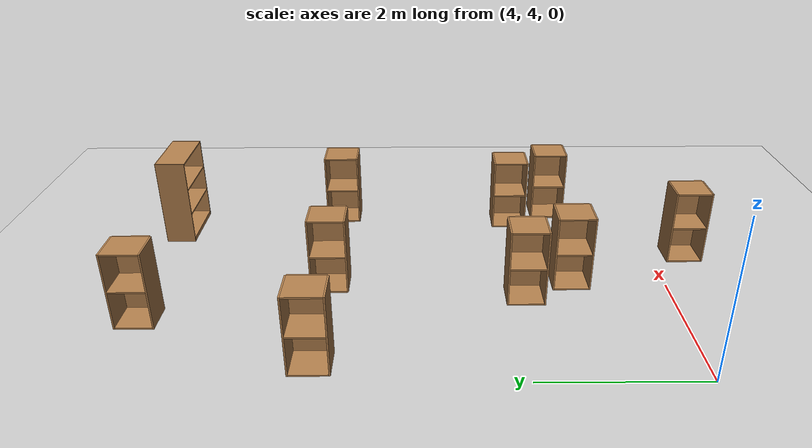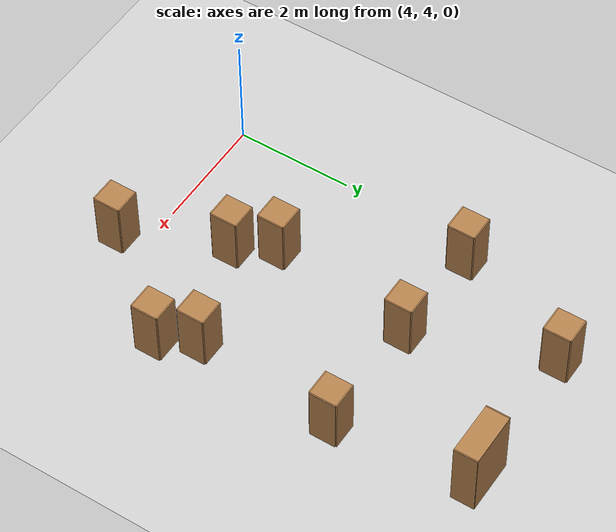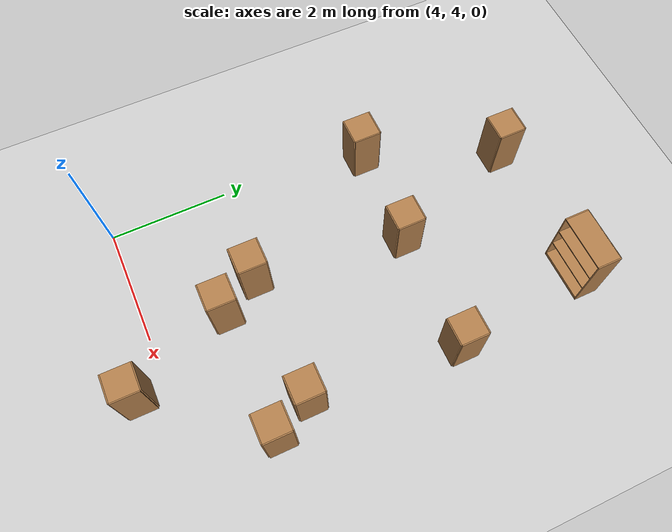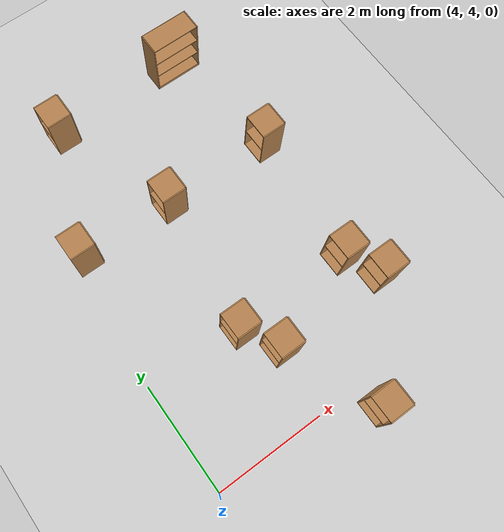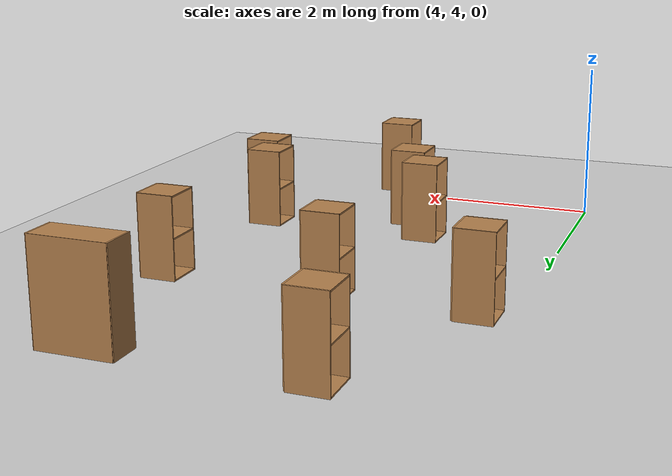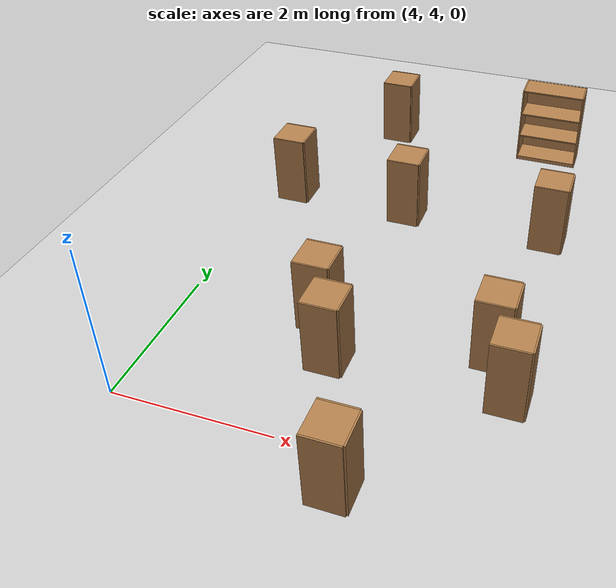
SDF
<sdf version="1.6">
 <world name="default">
  <model name="ground_plane">
   <static>1</static>
   <link name="link">
    <collision name="collision">
     <geometry><plane><normal>0 0 1</normal><size>100 100</size></plane></geometry>
     <surface><friction><ode><mu>100</mu><mu2>50</mu2></ode></friction></surface>
    </collision>
    <visual name="visual">
     <cast_shadows>0</cast_shadows>
     <geometry><plane><normal>0 0 1</normal><size>100 100</size></plane></geometry>
     <material>
      <script><uri>file://media/materials/scripts/gazebo.material</uri><name>Gazebo/Grey</name></script>
     </material>
    </visual>
   </link>
  </model>
  <model name="bookshelf">
   <static>1</static>
   <link name="link">
    <inertial><mass>1</mass></inertial>
    <collision name="back">
     <pose>0 0.005 0.6 0 -0 0</pose>
     <geometry><box><size>0.9 0.01 1.2</size></box></geometry>
    </collision>
    <visual name="visual1">
     <pose>0 0.005 0.6 0 -0 0</pose>
     <geometry><box><size>0.9 0.01 1.2</size></box></geometry>
     <material>
      <script><uri>file://media/materials/scripts/gazebo.material</uri><name>Gazebo/Wood</name></script>
     </material>
    </visual>
    <collision name="left_side">
     <pose>0.45 -0.195 0.6 0 -0 0</pose>
     <geometry><box><size>0.02 0.4 1.2</size></box></geometry>
    </collision>
    <visual name="visual2">
     <pose>0.45 -0.195 0.6 0 -0 0</pose>
     <geometry><box><size>0.02 0.4 1.2</size></box></geometry>
     <material>
      <script><uri>file://media/materials/scripts/gazebo.material</uri><name>Gazebo/Wood</name></script>
     </material>
    </visual>
    <collision name="right_side">
     <pose>-0.45 -0.195 0.6 0 -0 0</pose>
     <geometry><box><size>0.02 0.4 1.2</size></box></geometry>
    </collision>
    <visual name="visual3">
     <pose>-0.45 -0.195 0.6 0 -0 0</pose>
     <geometry><box><size>0.02 0.4 1.2</size></box></geometry>
     <material>
      <script><uri>file://media/materials/scripts/gazebo.material</uri><name>Gazebo/Wood</name></script>
     </material>
    </visual>
    <collision name="bottom">
     <pose>0 -0.195 0.03 0 -0 0</pose>
     <geometry><box><size>0.88 0.4 0.06</size></box></geometry>
    </collision>
    <visual name="visual4">
     <pose>0 -0.195 0.03 0 -0 0</pose>
     <geometry><box><size>0.88 0.4 0.06</size></box></geometry>
     <material>
      <script><uri>file://media/materials/scripts/gazebo.material</uri><name>Gazebo/Wood</name></script>
     </material>
    </visual>
    <collision name="top">
     <pose>0 -0.195 1.19 0 -0 0</pose>
     <geometry><box><size>0.88 0.4 0.02</size></box></geometry>
    </collision>
    <visual name="visual5">
     <pose>0 -0.195 1.19 0 -0 0</pose>
     <geometry><box><size>0.88 0.4 0.02</size></box></geometry>
     <material>
      <script><uri>file://media/materials/scripts/gazebo.material</uri><name>Gazebo/Wood</name></script>
     </material>
    </visual>
    <collision name="low_shelf">
     <pose>0 -0.195 0.43 0 -0 0</pose>
     <geometry><box><size>0.88 0.4 0.02</size></box></geometry>
    </collision>
    <visual name="visual6">
     <pose>0 -0.195 0.43 0 -0 0</pose>
     <geometry><box><size>0.88 0.4 0.02</size></box></geometry>
     <material>
      <script><uri>file://media/materials/scripts/gazebo.material</uri><name>Gazebo/Wood</name></script>
     </material>
    </visual>
    <collision name="high_shelf">
     <pose>0 -0.195 0.8 0 -0 0</pose>
     <geometry><box><size>0.88 0.4 0.02</size></box></geometry>
    </collision>
    <visual name="visual7">
     <pose>0 -0.195 0.8 0 -0 0</pose>
     <geometry><box><size>0.88 0.4 0.02</size></box></geometry>
     <material>
      <script><uri>file://media/materials/scripts/gazebo.material</uri><name>Gazebo/Wood</name></script>
     </material>
    </visual>
   </link>
   <pose>7.74898 10.872 0 0 -0 0</pose>
  </model>
  <model name="cabinet">
   <static>1</static>
   <link name="cabinet_bottom_plate">
    <inertial>
     <pose>0 0 -1 0 -0 0</pose>
     <inertia><ixx>2.05</ixx><ixy>0</ixy><ixz>0</ixz><iyy>2.05</iyy><iyz>0</iyz><izz>2.05</izz></inertia>
     <mass>25</mass>
    </inertial>
    <collision name="cabinet_bottom_plate_geom">
     <pose>0 0 0.01 0 -0 0</pose>
     <geometry><box><size>0.45 0.45 0.02</size></box></geometry>
    </collision>
    <visual name="cabinet_bottom_plate_geom_visual">
     <pose>0 0 0.01 0 -0 0</pose>
     <geometry><box><size>0.45 0.45 0.02</size></box></geometry>
     <material>
      <script><uri>file://media/materials/scripts/gazebo.material</uri><name>Gazebo/Wood</name></script>
     </material>
    </visual>
    <collision name="cabinet_bottom_plate_geom_cabinet_back_plate">
     <pose>0.235 0 0.51 0 -0 0</pose>
     <geometry><box><size>0.02 0.45 1.02</size></box></geometry>
    </collision>
    <visual name="cabinet_bottom_plate_geom_cabinet_back_plate_visual">
     <pose>0.235 0 0.51 0 -0 0</pose>
     <geometry><box><size>0.02 0.45 1.02</size></box></geometry>
     <material>
      <script><uri>file://media/materials/scripts/gazebo.material</uri><name>Gazebo/Wood</name></script>
     </material>
    </visual>
    <collision name="cabinet_bottom_plate_geom_cabinet_left_plate">
     <pose>0 0.235 0.51 0 -0 0</pose>
     <geometry><box><size>0.45 0.02 1.02</size></box></geometry>
    </collision>
    <visual name="cabinet_bottom_plate_geom_cabinet_left_plate_visual">
     <pose>0 0.235 0.51 0 -0 0</pose>
     <geometry><box><size>0.45 0.02 1.02</size></box></geometry>
     <material>
      <script><uri>file://media/materials/scripts/gazebo.material</uri><name>Gazebo/Wood</name></script>
     </material>
    </visual>
    <collision name="cabinet_bottom_plate_geom_cabinet_middle_plate">
     <pose>0 0 0.51 0 -0 0</pose>
     <geometry><box><size>0.45 0.45 0.02</size></box></geometry>
    </collision>
    <visual name="cabinet_bottom_plate_geom_cabinet_middle_plate_visual">
     <pose>0 0 0.51 0 -0 0</pose>
     <geometry><box><size>0.45 0.45 0.02</size></box></geometry>
     <material>
      <script><uri>file://media/materials/scripts/gazebo.material</uri><name>Gazebo/Wood</name></script>
     </material>
    </visual>
    <collision name="cabinet_bottom_plate_geom_cabinet_right_plate">
     <pose>0 -0.235 0.51 0 -0 0</pose>
     <geometry><box><size>0.45 0.02 1.02</size></box></geometry>
    </collision>
    <visual name="cabinet_bottom_plate_geom_cabinet_right_plate_visual">
     <pose>0 -0.235 0.51 0 -0 0</pose>
     <geometry><box><size>0.45 0.02 1.02</size></box></geometry>
     <material>
      <script><uri>file://media/materials/scripts/gazebo.material</uri><name>Gazebo/Wood</name></script>
     </material>
    </visual>
    <collision name="cabinet_bottom_plate_geom_cabinet_top_plate">
     <pose>0 0 1.01 0 -0 0</pose>
     <geometry><box><size>0.45 0.45 0.02</size></box></geometry>
    </collision>
    <visual name="cabinet_bottom_plate_geom_cabinet_top_plate_visual">
     <pose>0 0 1.01 0 -0 0</pose>
     <geometry><box><size>0.45 0.45 0.02</size></box></geometry>
     <material>
      <script><uri>file://media/materials/scripts/gazebo.material</uri><name>Gazebo/Wood</name></script>
     </material>
    </visual>
   </link>
   <pose>5.28128 10.6491 0 0 -0 0</pose>
  </model>
  <model name="cabinet_7">
   <static>1</static>
   <link name="cabinet_bottom_plate">
    <inertial>
     <pose>0 0 -1 0 -0 0</pose>
     <inertia><ixx>2.05</ixx><ixy>0</ixy><ixz>0</ixz><iyy>2.05</iyy><iyz>0</iyz><izz>2.05</izz></inertia>
     <mass>25</mass>
    </inertial>
    <collision name="cabinet_bottom_plate_geom">
     <pose>0 0 0.01 0 -0 0</pose>
     <geometry><box><size>0.45 0.45 0.02</size></box></geometry>
    </collision>
    <visual name="cabinet_bottom_plate_geom_visual">
     <pose>0 0 0.01 0 -0 0</pose>
     <geometry><box><size>0.45 0.45 0.02</size></box></geometry>
     <material>
      <script><uri>file://media/materials/scripts/gazebo.material</uri><name>Gazebo/Wood</name></script>
     </material>
    </visual>
    <collision name="cabinet_bottom_plate_geom_cabinet_back_plate">
     <pose>0.235 0 0.51 0 -0 0</pose>
     <geometry><box><size>0.02 0.45 1.02</size></box></geometry>
    </collision>
    <visual name="cabinet_bottom_plate_geom_cabinet_back_plate_visual">
     <pose>0.235 0 0.51 0 -0 0</pose>
     <geometry><box><size>0.02 0.45 1.02</size></box></geometry>
     <material>
      <script><uri>file://media/materials/scripts/gazebo.material</uri><name>Gazebo/Wood</name></script>
     </material>
    </visual>
    <collision name="cabinet_bottom_plate_geom_cabinet_left_plate">
     <pose>0 0.235 0.51 0 -0 0</pose>
     <geometry><box><size>0.45 0.02 1.02</size></box></geometry>
    </collision>
    <visual name="cabinet_bottom_plate_geom_cabinet_left_plate_visual">
     <pose>0 0.235 0.51 0 -0 0</pose>
     <geometry><box><size>0.45 0.02 1.02</size></box></geometry>
     <material>
      <script><uri>file://media/materials/scripts/gazebo.material</uri><name>Gazebo/Wood</name></script>
     </material>
    </visual>
    <collision name="cabinet_bottom_plate_geom_cabinet_middle_plate">
     <pose>0 0 0.51 0 -0 0</pose>
     <geometry><box><size>0.45 0.45 0.02</size></box></geometry>
    </collision>
    <visual name="cabinet_bottom_plate_geom_cabinet_middle_plate_visual">
     <pose>0 0 0.51 0 -0 0</pose>
     <geometry><box><size>0.45 0.45 0.02</size></box></geometry>
     <material>
      <script><uri>file://media/materials/scripts/gazebo.material</uri><name>Gazebo/Wood</name></script>
     </material>
    </visual>
    <collision name="cabinet_bottom_plate_geom_cabinet_right_plate">
     <pose>0 -0.235 0.51 0 -0 0</pose>
     <geometry><box><size>0.45 0.02 1.02</size></box></geometry>
    </collision>
    <visual name="cabinet_bottom_plate_geom_cabinet_right_plate_visual">
     <pose>0 -0.235 0.51 0 -0 0</pose>
     <geometry><box><size>0.45 0.02 1.02</size></box></geometry>
     <material>
      <script><uri>file://media/materials/scripts/gazebo.material</uri><name>Gazebo/Wood</name></script>
     </material>
    </visual>
    <collision name="cabinet_bottom_plate_geom_cabinet_top_plate">
     <pose>0 0 1.01 0 -0 0</pose>
     <geometry><box><size>0.45 0.45 0.02</size></box></geometry>
    </collision>
    <visual name="cabinet_bottom_plate_geom_cabinet_top_plate_visual">
     <pose>0 0 1.01 0 -0 0</pose>
     <geometry><box><size>0.45 0.45 0.02</size></box></geometry>
     <material>
      <script><uri>file://media/materials/scripts/gazebo.material</uri><name>Gazebo/Wood</name></script>
     </material>
    </visual>
   </link>
   <pose>8.13676 8.37707 0 0 -0 0</pose>
  </model>
  <model name="cabinet_8">
   <static>1</static>
   <link name="cabinet_bottom_plate">
    <inertial>
     <pose>0 0 -1 0 -0 0</pose>
     <inertia><ixx>2.05</ixx><ixy>0</ixy><ixz>0</ixz><iyy>2.05</iyy><iyz>0</iyz><izz>2.05</izz></inertia>
     <mass>25</mass>
    </inertial>
    <collision name="cabinet_bottom_plate_geom">
     <pose>0 0 0.01 0 -0 0</pose>
     <geometry><box><size>0.45 0.45 0.02</size></box></geometry>
    </collision>
    <visual name="cabinet_bottom_plate_geom_visual">
     <pose>0 0 0.01 0 -0 0</pose>
     <geometry><box><size>0.45 0.45 0.02</size></box></geometry>
     <material>
      <script><uri>file://media/materials/scripts/gazebo.material</uri><name>Gazebo/Wood</name></script>
     </material>
    </visual>
    <collision name="cabinet_bottom_plate_geom_cabinet_back_plate">
     <pose>0.235 0 0.51 0 -0 0</pose>
     <geometry><box><size>0.02 0.45 1.02</size></box></geometry>
    </collision>
    <visual name="cabinet_bottom_plate_geom_cabinet_back_plate_visual">
     <pose>0.235 0 0.51 0 -0 0</pose>
     <geometry><box><size>0.02 0.45 1.02</size></box></geometry>
     <material>
      <script><uri>file://media/materials/scripts/gazebo.material</uri><name>Gazebo/Wood</name></script>
     </material>
    </visual>
    <collision name="cabinet_bottom_plate_geom_cabinet_left_plate">
     <pose>0 0.235 0.51 0 -0 0</pose>
     <geometry><box><size>0.45 0.02 1.02</size></box></geometry>
    </collision>
    <visual name="cabinet_bottom_plate_geom_cabinet_left_plate_visual">
     <pose>0 0.235 0.51 0 -0 0</pose>
     <geometry><box><size>0.45 0.02 1.02</size></box></geometry>
     <material>
      <script><uri>file://media/materials/scripts/gazebo.material</uri><name>Gazebo/Wood</name></script>
     </material>
    </visual>
    <collision name="cabinet_bottom_plate_geom_cabinet_middle_plate">
     <pose>0 0 0.51 0 -0 0</pose>
     <geometry><box><size>0.45 0.45 0.02</size></box></geometry>
    </collision>
    <visual name="cabinet_bottom_plate_geom_cabinet_middle_plate_visual">
     <pose>0 0 0.51 0 -0 0</pose>
     <geometry><box><size>0.45 0.45 0.02</size></box></geometry>
     <material>
      <script><uri>file://media/materials/scripts/gazebo.material</uri><name>Gazebo/Wood</name></script>
     </material>
    </visual>
    <collision name="cabinet_bottom_plate_geom_cabinet_right_plate">
     <pose>0 -0.235 0.51 0 -0 0</pose>
     <geometry><box><size>0.45 0.02 1.02</size></box></geometry>
    </collision>
    <visual name="cabinet_bottom_plate_geom_cabinet_right_plate_visual">
     <pose>0 -0.235 0.51 0 -0 0</pose>
     <geometry><box><size>0.45 0.02 1.02</size></box></geometry>
     <material>
      <script><uri>file://media/materials/scripts/gazebo.material</uri><name>Gazebo/Wood</name></script>
     </material>
    </visual>
    <collision name="cabinet_bottom_plate_geom_cabinet_top_plate">
     <pose>0 0 1.01 0 -0 0</pose>
     <geometry><box><size>0.45 0.45 0.02</size></box></geometry>
    </collision>
    <visual name="cabinet_bottom_plate_geom_cabinet_top_plate_visual">
     <pose>0 0 1.01 0 -0 0</pose>
     <geometry><box><size>0.45 0.45 0.02</size></box></geometry>
     <material>
      <script><uri>file://media/materials/scripts/gazebo.material</uri><name>Gazebo/Wood</name></script>
     </material>
    </visual>
   </link>
   <pose>6.09286 8.39011 0 0 -0 0</pose>
  </model>
  <model name="cabinet_9">
   <static>1</static>
   <link name="cabinet_bottom_plate">
    <inertial>
     <pose>0 0 -1 0 -0 0</pose>
     <inertia><ixx>2.05</ixx><ixy>0</ixy><ixz>0</ixz><iyy>2.05</iyy><iyz>0</iyz><izz>2.05</izz></inertia>
     <mass>25</mass>
    </inertial>
    <collision name="cabinet_bottom_plate_geom">
     <pose>0 0 0.01 0 -0 0</pose>
     <geometry><box><size>0.45 0.45 0.02</size></box></geometry>
    </collision>
    <visual name="cabinet_bottom_plate_geom_visual">
     <pose>0 0 0.01 0 -0 0</pose>
     <geometry><box><size>0.45 0.45 0.02</size></box></geometry>
     <material>
      <script><uri>file://media/materials/scripts/gazebo.material</uri><name>Gazebo/Wood</name></script>
     </material>
    </visual>
    <collision name="cabinet_bottom_plate_geom_cabinet_back_plate">
     <pose>0.235 0 0.51 0 -0 0</pose>
     <geometry><box><size>0.02 0.45 1.02</size></box></geometry>
    </collision>
    <visual name="cabinet_bottom_plate_geom_cabinet_back_plate_visual">
     <pose>0.235 0 0.51 0 -0 0</pose>
     <geometry><box><size>0.02 0.45 1.02</size></box></geometry>
     <material>
      <script><uri>file://media/materials/scripts/gazebo.material</uri><name>Gazebo/Wood</name></script>
     </material>
    </visual>
    <collision name="cabinet_bottom_plate_geom_cabinet_left_plate">
     <pose>0 0.235 0.51 0 -0 0</pose>
     <geometry><box><size>0.45 0.02 1.02</size></box></geometry>
    </collision>
    <visual name="cabinet_bottom_plate_geom_cabinet_left_plate_visual">
     <pose>0 0.235 0.51 0 -0 0</pose>
     <geometry><box><size>0.45 0.02 1.02</size></box></geometry>
     <material>
      <script><uri>file://media/materials/scripts/gazebo.material</uri><name>Gazebo/Wood</name></script>
     </material>
    </visual>
    <collision name="cabinet_bottom_plate_geom_cabinet_middle_plate">
     <pose>0 0 0.51 0 -0 0</pose>
     <geometry><box><size>0.45 0.45 0.02</size></box></geometry>
    </collision>
    <visual name="cabinet_bottom_plate_geom_cabinet_middle_plate_visual">
     <pose>0 0 0.51 0 -0 0</pose>
     <geometry><box><size>0.45 0.45 0.02</size></box></geometry>
     <material>
      <script><uri>file://media/materials/scripts/gazebo.material</uri><name>Gazebo/Wood</name></script>
     </material>
    </visual>
    <collision name="cabinet_bottom_plate_geom_cabinet_right_plate">
     <pose>0 -0.235 0.51 0 -0 0</pose>
     <geometry><box><size>0.45 0.02 1.02</size></box></geometry>
    </collision>
    <visual name="cabinet_bottom_plate_geom_cabinet_right_plate_visual">
     <pose>0 -0.235 0.51 0 -0 0</pose>
     <geometry><box><size>0.45 0.02 1.02</size></box></geometry>
     <material>
      <script><uri>file://media/materials/scripts/gazebo.material</uri><name>Gazebo/Wood</name></script>
     </material>
    </visual>
    <collision name="cabinet_bottom_plate_geom_cabinet_top_plate">
     <pose>0 0 1.01 0 -0 0</pose>
     <geometry><box><size>0.45 0.45 0.02</size></box></geometry>
    </collision>
    <visual name="cabinet_bottom_plate_geom_cabinet_top_plate_visual">
     <pose>0 0 1.01 0 -0 0</pose>
     <geometry><box><size>0.45 0.45 0.02</size></box></geometry>
     <material>
      <script><uri>file://media/materials/scripts/gazebo.material</uri><name>Gazebo/Wood</name></script>
     </material>
    </visual>
   </link>
   <pose>4.3592 8.44647 0 0 -0 0</pose>
  </model>
  <model name="cabinet_15">
   <static>1</static>
   <link name="cabinet_bottom_plate">
    <inertial>
     <pose>0 0 -1 0 -0 0</pose>
     <inertia><ixx>2.05</ixx><ixy>0</ixy><ixz>0</ixz><iyy>2.05</iyy><iyz>0</iyz><izz>2.05</izz></inertia>
     <mass>25</mass>
    </inertial>
    <collision name="cabinet_bottom_plate_geom">
     <pose>0 0 0.01 0 -0 0</pose>
     <geometry><box><size>0.45 0.45 0.02</size></box></geometry>
    </collision>
    <visual name="cabinet_bottom_plate_geom_visual">
     <pose>0 0 0.01 0 -0 0</pose>
     <geometry><box><size>0.45 0.45 0.02</size></box></geometry>
     <material>
      <script><uri>file://media/materials/scripts/gazebo.material</uri><name>Gazebo/Wood</name></script>
     </material>
    </visual>
    <collision name="cabinet_bottom_plate_geom_cabinet_back_plate">
     <pose>0.235 0 0.51 0 -0 0</pose>
     <geometry><box><size>0.02 0.45 1.02</size></box></geometry>
    </collision>
    <visual name="cabinet_bottom_plate_geom_cabinet_back_plate_visual">
     <pose>0.235 0 0.51 0 -0 0</pose>
     <geometry><box><size>0.02 0.45 1.02</size></box></geometry>
     <material>
      <script><uri>file://media/materials/scripts/gazebo.material</uri><name>Gazebo/Wood</name></script>
     </material>
    </visual>
    <collision name="cabinet_bottom_plate_geom_cabinet_left_plate">
     <pose>0 0.235 0.51 0 -0 0</pose>
     <geometry><box><size>0.45 0.02 1.02</size></box></geometry>
    </collision>
    <visual name="cabinet_bottom_plate_geom_cabinet_left_plate_visual">
     <pose>0 0.235 0.51 0 -0 0</pose>
     <geometry><box><size>0.45 0.02 1.02</size></box></geometry>
     <material>
      <script><uri>file://media/materials/scripts/gazebo.material</uri><name>Gazebo/Wood</name></script>
     </material>
    </visual>
    <collision name="cabinet_bottom_plate_geom_cabinet_middle_plate">
     <pose>0 0 0.51 0 -0 0</pose>
     <geometry><box><size>0.45 0.45 0.02</size></box></geometry>
    </collision>
    <visual name="cabinet_bottom_plate_geom_cabinet_middle_plate_visual">
     <pose>0 0 0.51 0 -0 0</pose>
     <geometry><box><size>0.45 0.45 0.02</size></box></geometry>
     <material>
      <script><uri>file://media/materials/scripts/gazebo.material</uri><name>Gazebo/Wood</name></script>
     </material>
    </visual>
    <collision name="cabinet_bottom_plate_geom_cabinet_right_plate">
     <pose>0 -0.235 0.51 0 -0 0</pose>
     <geometry><box><size>0.45 0.02 1.02</size></box></geometry>
    </collision>
    <visual name="cabinet_bottom_plate_geom_cabinet_right_plate_visual">
     <pose>0 -0.235 0.51 0 -0 0</pose>
     <geometry><box><size>0.45 0.02 1.02</size></box></geometry>
     <material>
      <script><uri>file://media/materials/scripts/gazebo.material</uri><name>Gazebo/Wood</name></script>
     </material>
    </visual>
    <collision name="cabinet_bottom_plate_geom_cabinet_top_plate">
     <pose>0 0 1.01 0 -0 0</pose>
     <geometry><box><size>0.45 0.45 0.02</size></box></geometry>
    </collision>
    <visual name="cabinet_bottom_plate_geom_cabinet_top_plate_visual">
     <pose>0 0 1.01 0 -0 0</pose>
     <geometry><box><size>0.45 0.45 0.02</size></box></geometry>
     <material>
      <script><uri>file://media/materials/scripts/gazebo.material</uri><name>Gazebo/Wood</name></script>
     </material>
    </visual>
   </link>
   <pose>7.93605 5.89725 0 0 -0 0</pose>
  </model>
  <model name="cabinet_16">
   <static>1</static>
   <link name="cabinet_bottom_plate">
    <inertial>
     <pose>0 0 -1 0 -0 0</pose>
     <inertia><ixx>2.05</ixx><ixy>0</ixy><ixz>0</ixz><iyy>2.05</iyy><iyz>0</iyz><izz>2.05</izz></inertia>
     <mass>25</mass>
    </inertial>
    <collision name="cabinet_bottom_plate_geom">
     <pose>0 0 0.01 0 -0 0</pose>
     <geometry><box><size>0.45 0.45 0.02</size></box></geometry>
    </collision>
    <visual name="cabinet_bottom_plate_geom_visual">
     <pose>0 0 0.01 0 -0 0</pose>
     <geometry><box><size>0.45 0.45 0.02</size></box></geometry>
     <material>
      <script><uri>file://media/materials/scripts/gazebo.material</uri><name>Gazebo/Wood</name></script>
     </material>
    </visual>
    <collision name="cabinet_bottom_plate_geom_cabinet_back_plate">
     <pose>0.235 0 0.51 0 -0 0</pose>
     <geometry><box><size>0.02 0.45 1.02</size></box></geometry>
    </collision>
    <visual name="cabinet_bottom_plate_geom_cabinet_back_plate_visual">
     <pose>0.235 0 0.51 0 -0 0</pose>
     <geometry><box><size>0.02 0.45 1.02</size></box></geometry>
     <material>
      <script><uri>file://media/materials/scripts/gazebo.material</uri><name>Gazebo/Wood</name></script>
     </material>
    </visual>
    <collision name="cabinet_bottom_plate_geom_cabinet_left_plate">
     <pose>0 0.235 0.51 0 -0 0</pose>
     <geometry><box><size>0.45 0.02 1.02</size></box></geometry>
    </collision>
    <visual name="cabinet_bottom_plate_geom_cabinet_left_plate_visual">
     <pose>0 0.235 0.51 0 -0 0</pose>
     <geometry><box><size>0.45 0.02 1.02</size></box></geometry>
     <material>
      <script><uri>file://media/materials/scripts/gazebo.material</uri><name>Gazebo/Wood</name></script>
     </material>
    </visual>
    <collision name="cabinet_bottom_plate_geom_cabinet_middle_plate">
     <pose>0 0 0.51 0 -0 0</pose>
     <geometry><box><size>0.45 0.45 0.02</size></box></geometry>
    </collision>
    <visual name="cabinet_bottom_plate_geom_cabinet_middle_plate_visual">
     <pose>0 0 0.51 0 -0 0</pose>
     <geometry><box><size>0.45 0.45 0.02</size></box></geometry>
     <material>
      <script><uri>file://media/materials/scripts/gazebo.material</uri><name>Gazebo/Wood</name></script>
     </material>
    </visual>
    <collision name="cabinet_bottom_plate_geom_cabinet_right_plate">
     <pose>0 -0.235 0.51 0 -0 0</pose>
     <geometry><box><size>0.45 0.02 1.02</size></box></geometry>
    </collision>
    <visual name="cabinet_bottom_plate_geom_cabinet_right_plate_visual">
     <pose>0 -0.235 0.51 0 -0 0</pose>
     <geometry><box><size>0.45 0.02 1.02</size></box></geometry>
     <material>
      <script><uri>file://media/materials/scripts/gazebo.material</uri><name>Gazebo/Wood</name></script>
     </material>
    </visual>
    <collision name="cabinet_bottom_plate_geom_cabinet_top_plate">
     <pose>0 0 1.01 0 -0 0</pose>
     <geometry><box><size>0.45 0.45 0.02</size></box></geometry>
    </collision>
    <visual name="cabinet_bottom_plate_geom_cabinet_top_plate_visual">
     <pose>0 0 1.01 0 -0 0</pose>
     <geometry><box><size>0.45 0.45 0.02</size></box></geometry>
     <material>
      <script><uri>file://media/materials/scripts/gazebo.material</uri><name>Gazebo/Wood</name></script>
     </material>
    </visual>
   </link>
   <pose>5.76471 5.88539 0 0 -0 0</pose>
  </model>
  <model name="cabinet_23">
   <static>1</static>
   <link name="cabinet_bottom_plate">
    <inertial>
     <pose>0 0 -1 0 -0 0</pose>
     <inertia><ixx>2.05</ixx><ixy>0</ixy><ixz>0</ixz><iyy>2.05</iyy><iyz>0</iyz><izz>2.05</izz></inertia>
     <mass>25</mass>
    </inertial>
    <collision name="cabinet_bottom_plate_geom">
     <pose>0 0 0.01 0 -0 0</pose>
     <geometry><box><size>0.45 0.45 0.02</size></box></geometry>
    </collision>
    <visual name="cabinet_bottom_plate_geom_visual">
     <pose>0 0 0.01 0 -0 0</pose>
     <geometry><box><size>0.45 0.45 0.02</size></box></geometry>
     <material>
      <script><uri>file://media/materials/scripts/gazebo.material</uri><name>Gazebo/Wood</name></script>
     </material>
    </visual>
    <collision name="cabinet_bottom_plate_geom_cabinet_back_plate">
     <pose>0.235 0 0.51 0 -0 0</pose>
     <geometry><box><size>0.02 0.45 1.02</size></box></geometry>
    </collision>
    <visual name="cabinet_bottom_plate_geom_cabinet_back_plate_visual">
     <pose>0.235 0 0.51 0 -0 0</pose>
     <geometry><box><size>0.02 0.45 1.02</size></box></geometry>
     <material>
      <script><uri>file://media/materials/scripts/gazebo.material</uri><name>Gazebo/Wood</name></script>
     </material>
    </visual>
    <collision name="cabinet_bottom_plate_geom_cabinet_left_plate">
     <pose>0 0.235 0.51 0 -0 0</pose>
     <geometry><box><size>0.45 0.02 1.02</size></box></geometry>
    </collision>
    <visual name="cabinet_bottom_plate_geom_cabinet_left_plate_visual">
     <pose>0 0.235 0.51 0 -0 0</pose>
     <geometry><box><size>0.45 0.02 1.02</size></box></geometry>
     <material>
      <script><uri>file://media/materials/scripts/gazebo.material</uri><name>Gazebo/Wood</name></script>
     </material>
    </visual>
    <collision name="cabinet_bottom_plate_geom_cabinet_middle_plate">
     <pose>0 0 0.51 0 -0 0</pose>
     <geometry><box><size>0.45 0.45 0.02</size></box></geometry>
    </collision>
    <visual name="cabinet_bottom_plate_geom_cabinet_middle_plate_visual">
     <pose>0 0 0.51 0 -0 0</pose>
     <geometry><box><size>0.45 0.45 0.02</size></box></geometry>
     <material>
      <script><uri>file://media/materials/scripts/gazebo.material</uri><name>Gazebo/Wood</name></script>
     </material>
    </visual>
    <collision name="cabinet_bottom_plate_geom_cabinet_right_plate">
     <pose>0 -0.235 0.51 0 -0 0</pose>
     <geometry><box><size>0.45 0.02 1.02</size></box></geometry>
    </collision>
    <visual name="cabinet_bottom_plate_geom_cabinet_right_plate_visual">
     <pose>0 -0.235 0.51 0 -0 0</pose>
     <geometry><box><size>0.45 0.02 1.02</size></box></geometry>
     <material>
      <script><uri>file://media/materials/scripts/gazebo.material</uri><name>Gazebo/Wood</name></script>
     </material>
    </visual>
    <collision name="cabinet_bottom_plate_geom_cabinet_top_plate">
     <pose>0 0 1.01 0 -0 0</pose>
     <geometry><box><size>0.45 0.45 0.02</size></box></geometry>
    </collision>
    <visual name="cabinet_bottom_plate_geom_cabinet_top_plate_visual">
     <pose>0 0 1.01 0 -0 0</pose>
     <geometry><box><size>0.45 0.45 0.02</size></box></geometry>
     <material>
      <script><uri>file://media/materials/scripts/gazebo.material</uri><name>Gazebo/Wood</name></script>
     </material>
    </visual>
   </link>
   <pose>8.2431 5.28151 0 0 -0 0</pose>
  </model>
  <model name="cabinet_24">
   <static>1</static>
   <link name="cabinet_bottom_plate">
    <inertial>
     <pose>0 0 -1 0 -0 0</pose>
     <inertia><ixx>2.05</ixx><ixy>0</ixy><ixz>0</ixz><iyy>2.05</iyy><iyz>0</iyz><izz>2.05</izz></inertia>
     <mass>25</mass>
    </inertial>
    <collision name="cabinet_bottom_plate_geom">
     <pose>0 0 0.01 0 -0 0</pose>
     <geometry><box><size>0.45 0.45 0.02</size></box></geometry>
    </collision>
    <visual name="cabinet_bottom_plate_geom_visual">
     <pose>0 0 0.01 0 -0 0</pose>
     <geometry><box><size>0.45 0.45 0.02</size></box></geometry>
     <material>
      <script><uri>file://media/materials/scripts/gazebo.material</uri><name>Gazebo/Wood</name></script>
     </material>
    </visual>
    <collision name="cabinet_bottom_plate_geom_cabinet_back_plate">
     <pose>0.235 0 0.51 0 -0 0</pose>
     <geometry><box><size>0.02 0.45 1.02</size></box></geometry>
    </collision>
    <visual name="cabinet_bottom_plate_geom_cabinet_back_plate_visual">
     <pose>0.235 0 0.51 0 -0 0</pose>
     <geometry><box><size>0.02 0.45 1.02</size></box></geometry>
     <material>
      <script><uri>file://media/materials/scripts/gazebo.material</uri><name>Gazebo/Wood</name></script>
     </material>
    </visual>
    <collision name="cabinet_bottom_plate_geom_cabinet_left_plate">
     <pose>0 0.235 0.51 0 -0 0</pose>
     <geometry><box><size>0.45 0.02 1.02</size></box></geometry>
    </collision>
    <visual name="cabinet_bottom_plate_geom_cabinet_left_plate_visual">
     <pose>0 0.235 0.51 0 -0 0</pose>
     <geometry><box><size>0.45 0.02 1.02</size></box></geometry>
     <material>
      <script><uri>file://media/materials/scripts/gazebo.material</uri><name>Gazebo/Wood</name></script>
     </material>
    </visual>
    <collision name="cabinet_bottom_plate_geom_cabinet_middle_plate">
     <pose>0 0 0.51 0 -0 0</pose>
     <geometry><box><size>0.45 0.45 0.02</size></box></geometry>
    </collision>
    <visual name="cabinet_bottom_plate_geom_cabinet_middle_plate_visual">
     <pose>0 0 0.51 0 -0 0</pose>
     <geometry><box><size>0.45 0.45 0.02</size></box></geometry>
     <material>
      <script><uri>file://media/materials/scripts/gazebo.material</uri><name>Gazebo/Wood</name></script>
     </material>
    </visual>
    <collision name="cabinet_bottom_plate_geom_cabinet_right_plate">
     <pose>0 -0.235 0.51 0 -0 0</pose>
     <geometry><box><size>0.45 0.02 1.02</size></box></geometry>
    </collision>
    <visual name="cabinet_bottom_plate_geom_cabinet_right_plate_visual">
     <pose>0 -0.235 0.51 0 -0 0</pose>
     <geometry><box><size>0.45 0.02 1.02</size></box></geometry>
     <material>
      <script><uri>file://media/materials/scripts/gazebo.material</uri><name>Gazebo/Wood</name></script>
     </material>
    </visual>
    <collision name="cabinet_bottom_plate_geom_cabinet_top_plate">
     <pose>0 0 1.01 0 -0 0</pose>
     <geometry><box><size>0.45 0.45 0.02</size></box></geometry>
    </collision>
    <visual name="cabinet_bottom_plate_geom_cabinet_top_plate_visual">
     <pose>0 0 1.01 0 -0 0</pose>
     <geometry><box><size>0.45 0.45 0.02</size></box></geometry>
     <material>
      <script><uri>file://media/materials/scripts/gazebo.material</uri><name>Gazebo/Wood</name></script>
     </material>
    </visual>
   </link>
   <pose>6.12778 5.25589 0 0 -0 0</pose>
  </model>
  <model name="cabinet_33">
   <static>1</static>
   <link name="cabinet_bottom_plate">
    <inertial>
     <pose>0 0 -1 0 -0 0</pose>
     <inertia><ixx>2.05</ixx><ixy>0</ixy><ixz>0</ixz><iyy>2.05</iyy><iyz>0</iyz><izz>2.05</izz></inertia>
     <mass>25</mass>
    </inertial>
    <collision name="cabinet_bottom_plate_geom">
     <pose>0 0 0.01 0 -0 0</pose>
     <geometry><box><size>0.45 0.45 0.02</size></box></geometry>
    </collision>
    <visual name="cabinet_bottom_plate_geom_visual">
     <pose>0 0 0.01 0 -0 0</pose>
     <geometry><box><size>0.45 0.45 0.02</size></box></geometry>
     <material>
      <script><uri>file://media/materials/scripts/gazebo.material</uri><name>Gazebo/Wood</name></script>
     </material>
    </visual>
    <collision name="cabinet_bottom_plate_geom_cabinet_back_plate">
     <pose>0.235 0 0.51 0 -0 0</pose>
     <geometry><box><size>0.02 0.45 1.02</size></box></geometry>
    </collision>
    <visual name="cabinet_bottom_plate_geom_cabinet_back_plate_visual">
     <pose>0.235 0 0.51 0 -0 0</pose>
     <geometry><box><size>0.02 0.45 1.02</size></box></geometry>
     <material>
      <script><uri>file://media/materials/scripts/gazebo.material</uri><name>Gazebo/Wood</name></script>
     </material>
    </visual>
    <collision name="cabinet_bottom_plate_geom_cabinet_left_plate">
     <pose>0 0.235 0.51 0 -0 0</pose>
     <geometry><box><size>0.45 0.02 1.02</size></box></geometry>
    </collision>
    <visual name="cabinet_bottom_plate_geom_cabinet_left_plate_visual">
     <pose>0 0.235 0.51 0 -0 0</pose>
     <geometry><box><size>0.45 0.02 1.02</size></box></geometry>
     <material>
      <script><uri>file://media/materials/scripts/gazebo.material</uri><name>Gazebo/Wood</name></script>
     </material>
    </visual>
    <collision name="cabinet_bottom_plate_geom_cabinet_middle_plate">
     <pose>0 0 0.51 0 -0 0</pose>
     <geometry><box><size>0.45 0.45 0.02</size></box></geometry>
    </collision>
    <visual name="cabinet_bottom_plate_geom_cabinet_middle_plate_visual">
     <pose>0 0 0.51 0 -0 0</pose>
     <geometry><box><size>0.45 0.45 0.02</size></box></geometry>
     <material>
      <script><uri>file://media/materials/scripts/gazebo.material</uri><name>Gazebo/Wood</name></script>
     </material>
    </visual>
    <collision name="cabinet_bottom_plate_geom_cabinet_right_plate">
     <pose>0 -0.235 0.51 0 -0 0</pose>
     <geometry><box><size>0.45 0.02 1.02</size></box></geometry>
    </collision>
    <visual name="cabinet_bottom_plate_geom_cabinet_right_plate_visual">
     <pose>0 -0.235 0.51 0 -0 0</pose>
     <geometry><box><size>0.45 0.02 1.02</size></box></geometry>
     <material>
      <script><uri>file://media/materials/scripts/gazebo.material</uri><name>Gazebo/Wood</name></script>
     </material>
    </visual>
    <collision name="cabinet_bottom_plate_geom_cabinet_top_plate">
     <pose>0 0 1.01 0 -0 0</pose>
     <geometry><box><size>0.45 0.45 0.02</size></box></geometry>
    </collision>
    <visual name="cabinet_bottom_plate_geom_cabinet_top_plate_visual">
     <pose>0 0 1.01 0 -0 0</pose>
     <geometry><box><size>0.45 0.45 0.02</size></box></geometry>
     <material>
      <script><uri>file://media/materials/scripts/gazebo.material</uri><name>Gazebo/Wood</name></script>
     </material>
    </visual>
   </link>
   <pose>6.85105 3.57213 0 0 -0 0</pose>
  </model>
 </world>
</sdf>
